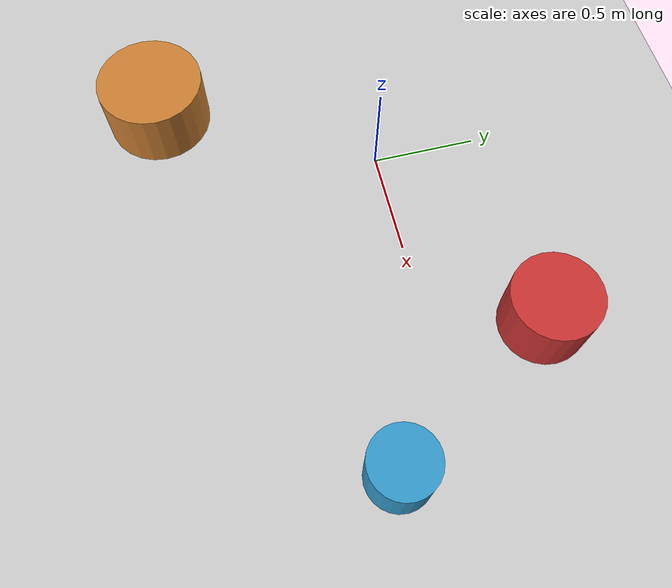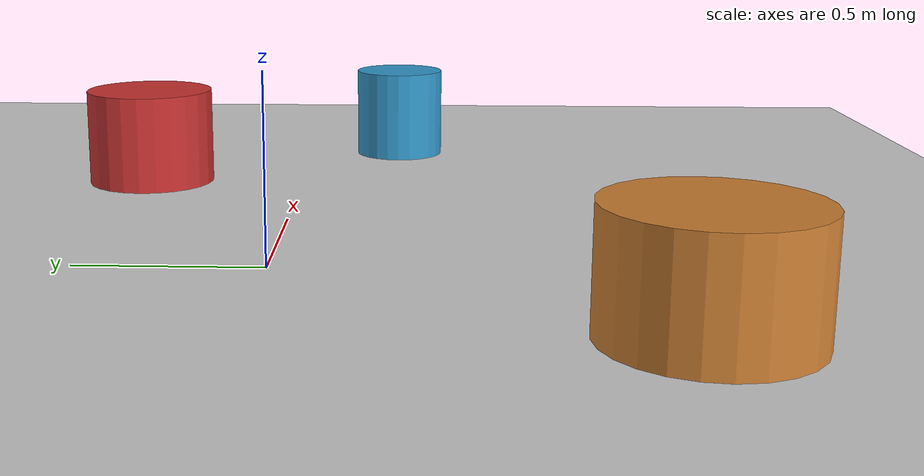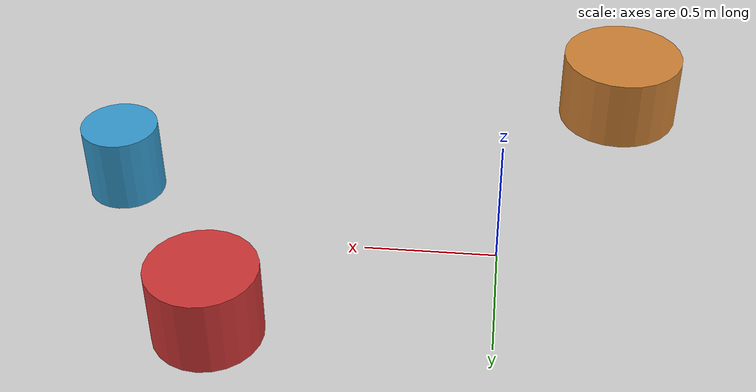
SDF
<?xml version="1.0" ?>
<sdf version="1.6">
  <world name="hybrid_obstacle_world">
    <include>
      <uri>model://ground_plane</uri>
    </include>
    <include>
      <uri>model://sun</uri>
    </include>

    <model name="obstacle_1">
      <static>true</static>
      <pose>1.0 0.5 0.15 0 0 0</pose>
      <link name="link">
        <collision name="collision">
          <geometry>
            <cylinder>
              <radius>0.2</radius>
              <length>0.3</length>
            </cylinder>
          </geometry>
        </collision>
        <visual name="visual">
          <geometry>
            <cylinder>
              <radius>0.2</radius>
              <length>0.3</length>
            </cylinder>
          </geometry>
          <material>
            <ambient>0.8 0.2 0.2 1</ambient>
            <diffuse>0.8 0.2 0.2 1</diffuse>
          </material>
        </visual>
      </link>
    </model>

    <model name="obstacle_2">
      <static>true</static>
      <pose>-0.5 -1.0 0.15 0 0 0</pose>
      <link name="link">
        <collision name="collision">
          <geometry>
            <cylinder>
              <radius>0.25</radius>
              <length>0.3</length>
            </cylinder>
          </geometry>
        </collision>
        <visual name="visual">
          <geometry>
            <cylinder>
              <radius>0.25</radius>
              <length>0.3</length>
            </cylinder>
          </geometry>
          <material>
            <ambient>0.8 0.5 0.2 1</ambient>
            <diffuse>0.8 0.5 0.2 1</diffuse>
          </material>
        </visual>
      </link>
    </model>

    <model name="obstacle_3">
      <static>true</static>
      <pose>1.5 -0.3 0.15 0 0 0</pose>
      <link name="link">
        <collision name="collision">
          <geometry>
            <cylinder>
              <radius>0.15</radius>
              <length>0.3</length>
            </cylinder>
          </geometry>
        </collision>
        <visual name="visual">
          <geometry>
            <cylinder>
              <radius>0.15</radius>
              <length>0.3</length>
            </cylinder>
          </geometry>
          <material>
            <ambient>0.2 0.6 0.8 1</ambient>
            <diffuse>0.2 0.6 0.8 1</diffuse>
          </material>
        </visual>
      </link>
    </model>
  </world>
</sdf>
